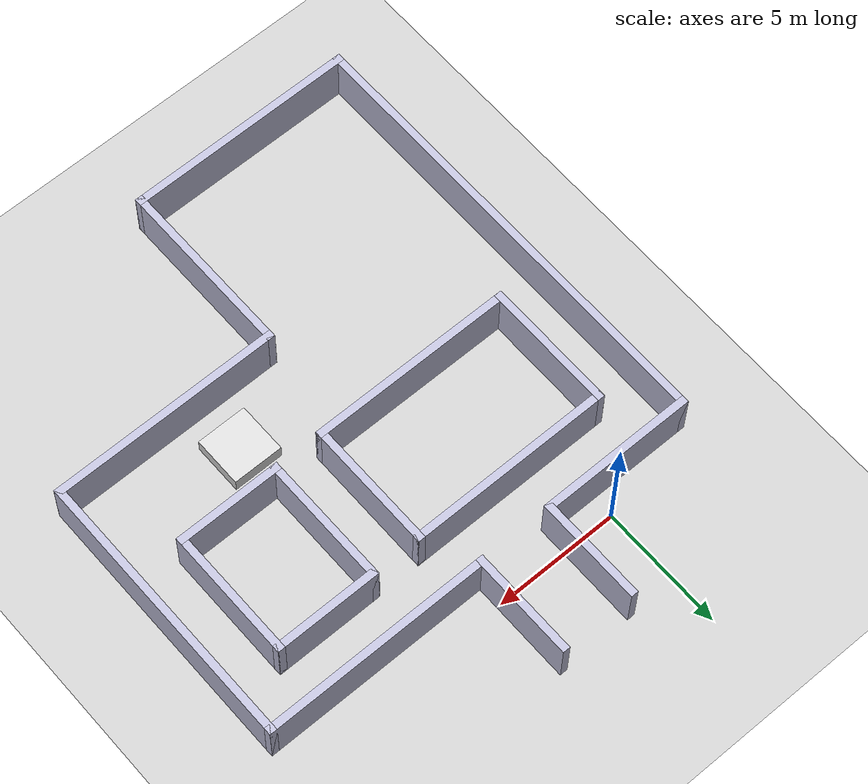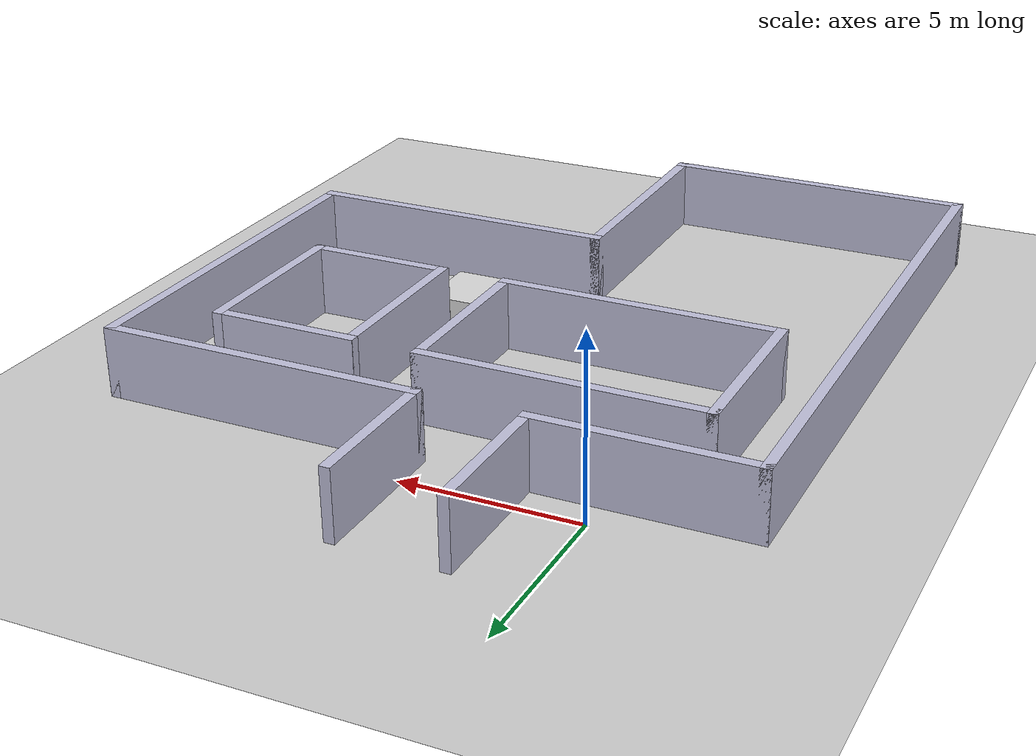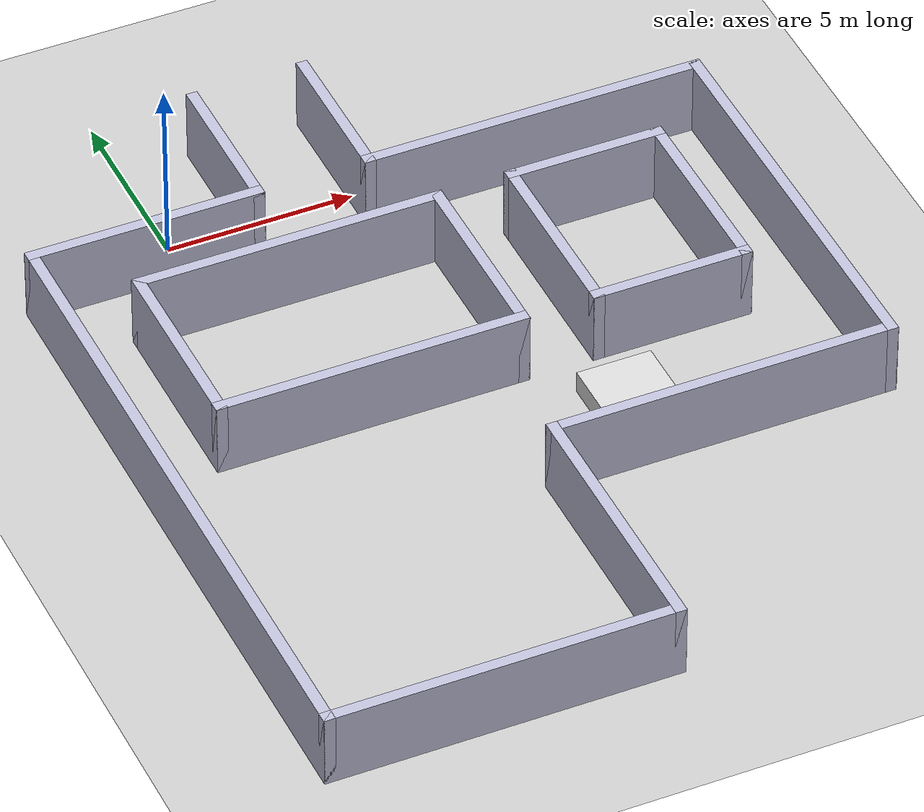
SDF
<sdf version="1.6">
 <world name="intersection_lobby">
  <physics type="ode">
   <max_step_size>0.001</max_step_size>
   <real_time_factor>1</real_time_factor>
   <real_time_update_rate>1000</real_time_update_rate>
  </physics>
  <light name="sun" type="directional">
   <pose>0 0 10 0 0 0</pose>
   <diffuse>0.8 0.8 0.8 1</diffuse>
   <specular>0.2 0.2 0.2 1</specular>
   <attenuation>
    <range>1000</range>
    <constant>0.9</constant>
    <linear>0.01</linear>
    <quadratic>0.001</quadratic>
   </attenuation>
   <direction>-0.5 0.1 -0.9</direction>
  </light>
  <model name="ground_plane">
   <static>true</static>
   <link name="link">
    <collision name="col">
     <geometry><plane><normal>0 0 1</normal><size>100 100</size></plane></geometry>
    </collision>
    <visual name="vis">
     <geometry><plane><normal>0 0 1</normal><size>100 100</size></plane></geometry>
     <material><ambient>0.8 0.8 0.8 1</ambient><diffuse>0.8 0.8 0.8 1</diffuse></material>
    </visual>
   </link>
  </model>
  <model name="wall_1">
   <static>true</static>
   <pose>0.50 -19.00 1 0 0 0</pose>
   <link name="link">
    <collision name="col"><geometry><box><size>9.30 0.30 2.0</size></box></geometry></collision>
    <visual name="vis">
     <geometry><box><size>9.30 0.30 2.0</size></box></geometry>
     <material><ambient>0.75 0.75 0.85 1</ambient><diffuse>0.75 0.75 0.85 1</diffuse></material>
    </visual>
   </link>
  </model>
  <model name="wall_2">
   <static>true</static>
   <pose>9.50 -12.00 1 0 0 0</pose>
   <link name="link">
    <collision name="col"><geometry><box><size>9.30 0.30 2.0</size></box></geometry></collision>
    <visual name="vis">
     <geometry><box><size>9.30 0.30 2.0</size></box></geometry>
     <material><ambient>0.75 0.75 0.85 1</ambient><diffuse>0.75 0.75 0.85 1</diffuse></material>
    </visual>
   </link>
  </model>
  <model name="wall_3">
   <static>true</static>
   <pose>-1.00 -1.00 1 0 0 0</pose>
   <link name="link">
    <collision name="col"><geometry><box><size>6.30 0.30 2.0</size></box></geometry></collision>
    <visual name="vis">
     <geometry><box><size>6.30 0.30 2.0</size></box></geometry>
     <material><ambient>0.75 0.75 0.85 1</ambient><diffuse>0.75 0.75 0.85 1</diffuse></material>
    </visual>
   </link>
  </model>
  <model name="wall_4">
   <static>true</static>
   <pose>9.50 -1.00 1 0 0 0</pose>
   <link name="link">
    <collision name="col"><geometry><box><size>9.30 0.30 2.0</size></box></geometry></collision>
    <visual name="vis">
     <geometry><box><size>9.30 0.30 2.0</size></box></geometry>
     <material><ambient>0.75 0.75 0.85 1</ambient><diffuse>0.75 0.75 0.85 1</diffuse></material>
    </visual>
   </link>
  </model>
  <model name="wall_5">
   <static>true</static>
   <pose>2.00 -8.00 1 0 0 0</pose>
   <link name="link">
    <collision name="col"><geometry><box><size>8.30 0.30 2.0</size></box></geometry></collision>
    <visual name="vis">
     <geometry><box><size>8.30 0.30 2.0</size></box></geometry>
     <material><ambient>0.75 0.75 0.85 1</ambient><diffuse>0.75 0.75 0.85 1</diffuse></material>
    </visual>
   </link>
  </model>
  <model name="wall_6">
   <static>true</static>
   <pose>2.00 -3.00 1 0 0 0</pose>
   <link name="link">
    <collision name="col"><geometry><box><size>8.30 0.30 2.0</size></box></geometry></collision>
    <visual name="vis">
     <geometry><box><size>8.30 0.30 2.0</size></box></geometry>
     <material><ambient>0.75 0.75 0.85 1</ambient><diffuse>0.75 0.75 0.85 1</diffuse></material>
    </visual>
   </link>
  </model>
  <model name="wall_7">
   <static>true</static>
   <pose>10.00 -8.00 1 0 0 0</pose>
   <link name="link">
    <collision name="col"><geometry><box><size>4.30 0.30 2.0</size></box></geometry></collision>
    <visual name="vis">
     <geometry><box><size>4.30 0.30 2.0</size></box></geometry>
     <material><ambient>0.75 0.75 0.85 1</ambient><diffuse>0.75 0.75 0.85 1</diffuse></material>
    </visual>
   </link>
  </model>
  <model name="wall_8">
   <static>true</static>
   <pose>10.00 -3.00 1 0 0 0</pose>
   <link name="link">
    <collision name="col"><geometry><box><size>4.30 0.30 2.0</size></box></geometry></collision>
    <visual name="vis">
     <geometry><box><size>4.30 0.30 2.0</size></box></geometry>
     <material><ambient>0.75 0.75 0.85 1</ambient><diffuse>0.75 0.75 0.85 1</diffuse></material>
    </visual>
   </link>
  </model>
  <model name="wall_9">
   <static>true</static>
   <pose>-4.00 -10.00 1 0 0 0</pose>
   <link name="link">
    <collision name="col"><geometry><box><size>0.30 18.30 2.0</size></box></geometry></collision>
    <visual name="vis">
     <geometry><box><size>0.30 18.30 2.0</size></box></geometry>
     <material><ambient>0.75 0.75 0.85 1</ambient><diffuse>0.75 0.75 0.85 1</diffuse></material>
    </visual>
   </link>
  </model>
  <model name="wall_10">
   <static>true</static>
   <pose>5.00 -15.50 1 0 0 0</pose>
   <link name="link">
    <collision name="col"><geometry><box><size>0.30 7.30 2.0</size></box></geometry></collision>
    <visual name="vis">
     <geometry><box><size>0.30 7.30 2.0</size></box></geometry>
     <material><ambient>0.75 0.75 0.85 1</ambient><diffuse>0.75 0.75 0.85 1</diffuse></material>
    </visual>
   </link>
  </model>
  <model name="wall_11">
   <static>true</static>
   <pose>14.00 -6.50 1 0 0 0</pose>
   <link name="link">
    <collision name="col"><geometry><box><size>0.30 11.30 2.0</size></box></geometry></collision>
    <visual name="vis">
     <geometry><box><size>0.30 11.30 2.0</size></box></geometry>
     <material><ambient>0.75 0.75 0.85 1</ambient><diffuse>0.75 0.75 0.85 1</diffuse></material>
    </visual>
   </link>
  </model>
  <model name="wall_12">
   <static>true</static>
   <pose>2.00 1.00 1 0 0 0</pose>
   <link name="link">
    <collision name="col"><geometry><box><size>0.30 4.30 2.0</size></box></geometry></collision>
    <visual name="vis">
     <geometry><box><size>0.30 4.30 2.0</size></box></geometry>
     <material><ambient>0.75 0.75 0.85 1</ambient><diffuse>0.75 0.75 0.85 1</diffuse></material>
    </visual>
   </link>
  </model>
  <model name="wall_13">
   <static>true</static>
   <pose>5.00 1.00 1 0 0 0</pose>
   <link name="link">
    <collision name="col"><geometry><box><size>0.30 4.30 2.0</size></box></geometry></collision>
    <visual name="vis">
     <geometry><box><size>0.30 4.30 2.0</size></box></geometry>
     <material><ambient>0.75 0.75 0.85 1</ambient><diffuse>0.75 0.75 0.85 1</diffuse></material>
    </visual>
   </link>
  </model>
  <model name="wall_14">
   <static>true</static>
   <pose>-2.00 -5.50 1 0 0 0</pose>
   <link name="link">
    <collision name="col"><geometry><box><size>0.30 5.30 2.0</size></box></geometry></collision>
    <visual name="vis">
     <geometry><box><size>0.30 5.30 2.0</size></box></geometry>
     <material><ambient>0.75 0.75 0.85 1</ambient><diffuse>0.75 0.75 0.85 1</diffuse></material>
    </visual>
   </link>
  </model>
  <model name="wall_15">
   <static>true</static>
   <pose>6.00 -5.50 1 0 0 0</pose>
   <link name="link">
    <collision name="col"><geometry><box><size>0.30 5.30 2.0</size></box></geometry></collision>
    <visual name="vis">
     <geometry><box><size>0.30 5.30 2.0</size></box></geometry>
     <material><ambient>0.75 0.75 0.85 1</ambient><diffuse>0.75 0.75 0.85 1</diffuse></material>
    </visual>
   </link>
  </model>
  <model name="wall_16">
   <static>true</static>
   <pose>8.00 -5.50 1 0 0 0</pose>
   <link name="link">
    <collision name="col"><geometry><box><size>0.30 5.30 2.0</size></box></geometry></collision>
    <visual name="vis">
     <geometry><box><size>0.30 5.30 2.0</size></box></geometry>
     <material><ambient>0.75 0.75 0.85 1</ambient><diffuse>0.75 0.75 0.85 1</diffuse></material>
    </visual>
   </link>
  </model>
  <model name="wall_17">
   <static>true</static>
   <pose>12.00 -5.50 1 0 0 0</pose>
   <link name="link">
    <collision name="col"><geometry><box><size>0.30 5.30 2.0</size></box></geometry></collision>
    <visual name="vis">
     <geometry><box><size>0.30 5.30 2.0</size></box></geometry>
     <material><ambient>0.75 0.75 0.85 1</ambient><diffuse>0.75 0.75 0.85 1</diffuse></material>
    </visual>
   </link>
  </model>
  <model name="gurney">
   <pose>8.00 -10.00 0 0 0 0</pose>
   <static>false</static>
   <link name="link">
    <inertial>
     <mass>5.0</mass>
     <inertia><ixx>0.1</ixx><ixy>0</ixy><ixz>0</ixz><iyy>0.1</iyy><iyz>0</iyz><izz>0.1</izz></inertia>
    </inertial>
    <collision name="collision">
     <geometry><box><size>2.0 2.0 0.60</size></box></geometry>
     <pose>0 0 0.3 0 0 0</pose>
    </collision>
    <visual name="visual">
     <geometry><box><size>2.0 2.0 0.60</size></box></geometry>
     <pose>0 0 0.3 0 0 0</pose>
     <material><ambient>0.85 0.85 0.85 1</ambient><diffuse>0.85 0.85 0.85 1</diffuse></material>
    </visual>
   </link>
   <plugin name="gurney_move" filename="libgazebo_ros_planar_move.so">
    <ros><namespace>gurney</namespace></ros>
    <update_rate>50</update_rate>
    <publish_odom>false</publish_odom>
    <publish_odom_tf>false</publish_odom_tf>
   </plugin>
  </model>
 </world>
</sdf>
